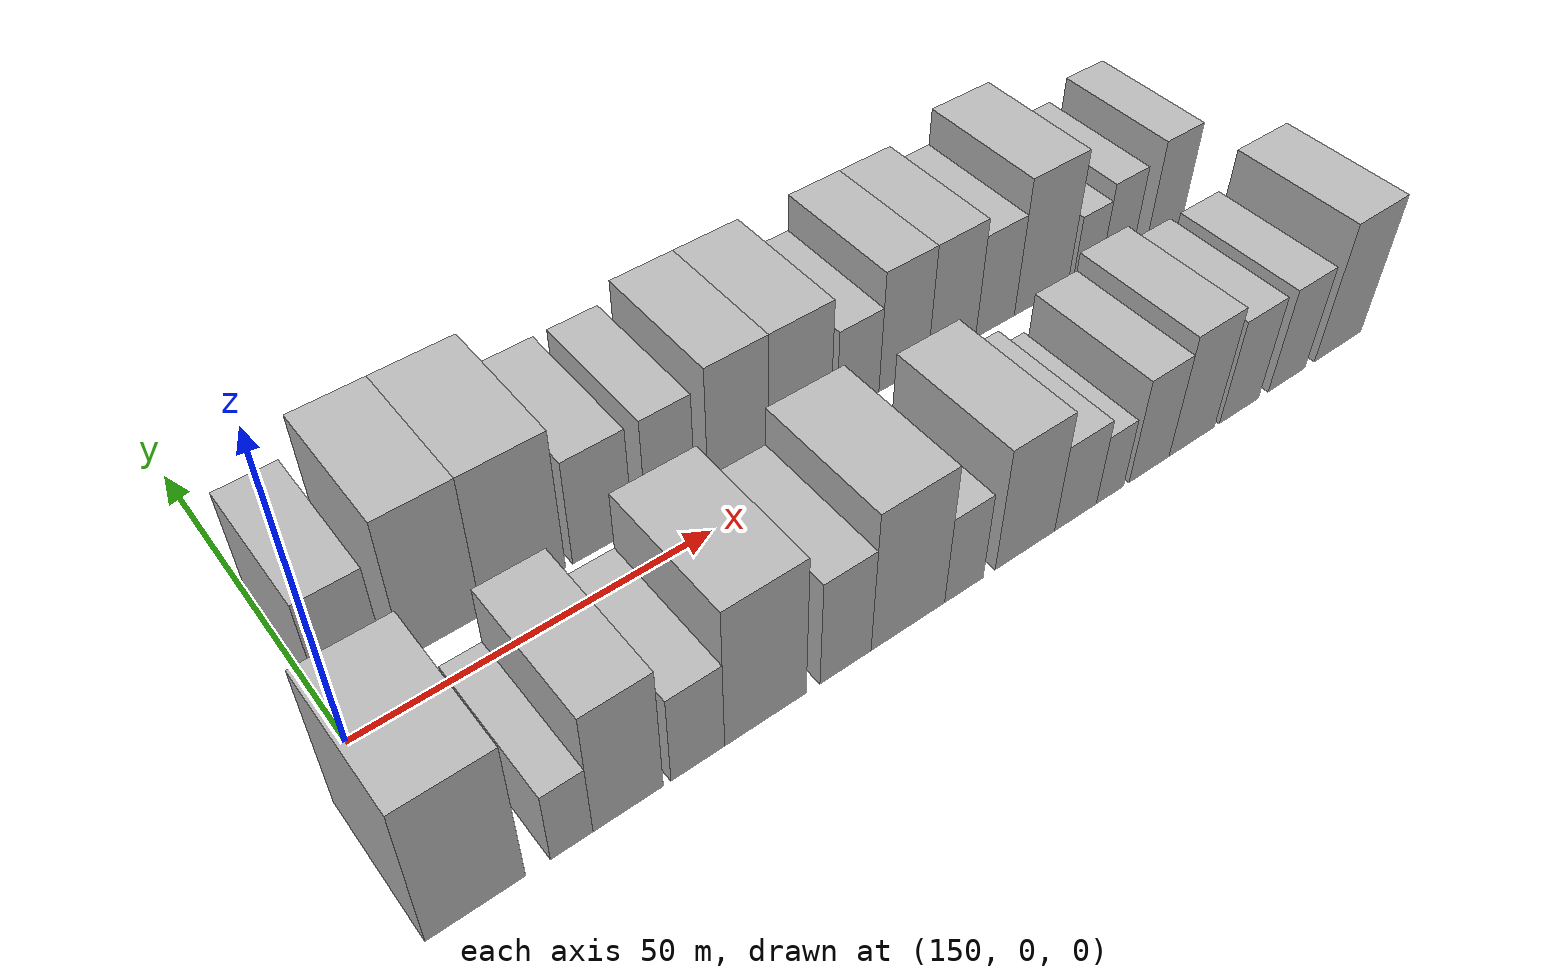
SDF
<sdf version="1.6">
 <world name="default">
  <model name="building_16">
   <static>1</static>
   <pose>154.3369 16.0000 0 0.000000 0.000000 1.570796</pose>
   <link name="link">
    <pose>0 0 9.00 0 0 0</pose>
    <collision name="collision"><geometry><box><size>20.0000 8.3127 18.0000</size></box></geometry></collision>
    <visual name="visual">
     <cast_shadows>0</cast_shadows>
     <geometry><box><size>20.0000 8.3127 18.0000</size></box></geometry>
     <material>
      <script>
       <uri>model://HANNAS_wall/materials/scripts</uri>
       <uri>model://HANNAS_wall/materials/textures</uri>
       <name>vrc/HANNAS_wall</name>
      </script>
     </material>
    </visual>
   </link>
  </model>
  <model name="building_17">
   <static>1</static>
   <pose>165.6485 16.0000 0 0.000000 0.000000 1.570796</pose>
   <link name="link">
    <pose>0 0 12.00 0 0 0</pose>
    <collision name="collision"><geometry><box><size>20.0000 10.3104 24.0000</size></box></geometry></collision>
    <visual name="visual">
     <cast_shadows>0</cast_shadows>
     <geometry><box><size>20.0000 10.3104 24.0000</size></box></geometry>
     <material>
      <script>
       <uri>model://HANNAS_wall/materials/scripts</uri>
       <uri>model://HANNAS_wall/materials/textures</uri>
       <name>vrc/HANNAS_wall</name>
      </script>
     </material>
    </visual>
   </link>
  </model>
  <model name="building_18">
   <static>1</static>
   <pose>176.6522 16.0000 0 0.000000 0.000000 1.570796</pose>
   <link name="link">
    <pose>0 0 12.00 0 0 0</pose>
    <collision name="collision"><geometry><box><size>20.0000 11.6972 24.0000</size></box></geometry></collision>
    <visual name="visual">
     <cast_shadows>0</cast_shadows>
     <geometry><box><size>20.0000 11.6972 24.0000</size></box></geometry>
     <material>
      <script>
       <uri>model://HANNAS_wall/materials/scripts</uri>
       <uri>model://HANNAS_wall/materials/textures</uri>
       <name>vrc/HANNAS_wall</name>
      </script>
     </material>
    </visual>
   </link>
  </model>
  <model name="building_19">
   <static>1</static>
   <pose>187.9328 16.0000 0 0.000000 0.000000 1.570796</pose>
   <link name="link">
    <pose>0 0 9.00 0 0 0</pose>
    <collision name="collision"><geometry><box><size>20.0000 8.8639 18.0000</size></box></geometry></collision>
    <visual name="visual">
     <cast_shadows>0</cast_shadows>
     <geometry><box><size>20.0000 8.8639 18.0000</size></box></geometry>
     <material>
      <script>
       <uri>model://HANNAS_wall/materials/scripts</uri>
       <uri>model://HANNAS_wall/materials/textures</uri>
       <name>vrc/HANNAS_wall</name>
      </script>
     </material>
    </visual>
   </link>
  </model>
  <model name="building_20">
   <static>1</static>
   <pose>198.1015 16.0000 0 0.000000 0.000000 1.570796</pose>
   <link name="link">
    <pose>0 0 9.00 0 0 0</pose>
    <collision name="collision"><geometry><box><size>20.0000 7.4735 18.0000</size></box></geometry></collision>
    <visual name="visual">
     <cast_shadows>0</cast_shadows>
     <geometry><box><size>20.0000 7.4735 18.0000</size></box></geometry>
     <material>
      <script>
       <uri>model://HANNAS_wall/materials/scripts</uri>
       <uri>model://HANNAS_wall/materials/textures</uri>
       <name>vrc/HANNAS_wall</name>
      </script>
     </material>
    </visual>
   </link>
  </model>
  <model name="building_21">
   <static>1</static>
   <pose>208.7052 16.0000 0 0.000000 0.000000 1.570796</pose>
   <link name="link">
    <pose>0 0 10.50 0 0 0</pose>
    <collision name="collision"><geometry><box><size>20.0000 9.7339 21.0000</size></box></geometry></collision>
    <visual name="visual">
     <cast_shadows>0</cast_shadows>
     <geometry><box><size>20.0000 9.7339 21.0000</size></box></geometry>
     <material>
      <script>
       <uri>model://HANNAS_wall/materials/scripts</uri>
       <uri>model://HANNAS_wall/materials/textures</uri>
       <name>vrc/HANNAS_wall</name>
      </script>
     </material>
    </visual>
   </link>
  </model>
  <model name="building_22">
   <static>1</static>
   <pose>218.7439 16.0000 0 0.000000 0.000000 1.570796</pose>
   <link name="link">
    <pose>0 0 10.50 0 0 0</pose>
    <collision name="collision"><geometry><box><size>20.0000 10.3436 21.0000</size></box></geometry></collision>
    <visual name="visual">
     <cast_shadows>0</cast_shadows>
     <geometry><box><size>20.0000 10.3436 21.0000</size></box></geometry>
     <material>
      <script>
       <uri>model://HANNAS_wall/materials/scripts</uri>
       <uri>model://HANNAS_wall/materials/textures</uri>
       <name>vrc/HANNAS_wall</name>
      </script>
     </material>
    </visual>
   </link>
  </model>
  <model name="building_23">
   <static>1</static>
   <pose>228.6101 16.0000 0 0.000000 0.000000 1.570796</pose>
   <link name="link">
    <pose>0 0 7.50 0 0 0</pose>
    <collision name="collision"><geometry><box><size>20.0000 7.3887 15.0000</size></box></geometry></collision>
    <visual name="visual">
     <cast_shadows>0</cast_shadows>
     <geometry><box><size>20.0000 7.3887 15.0000</size></box></geometry>
     <material>
      <script>
       <uri>model://HANNAS_wall/materials/scripts</uri>
       <uri>model://HANNAS_wall/materials/textures</uri>
       <name>vrc/HANNAS_wall</name>
      </script>
     </material>
    </visual>
   </link>
  </model>
  <model name="building_24">
   <static>1</static>
   <pose>236.6846 16.0000 0 0.000000 0.000000 1.570796</pose>
   <link name="link">
    <pose>0 0 10.50 0 0 0</pose>
    <collision name="collision"><geometry><box><size>20.0000 8.7604 21.0000</size></box></geometry></collision>
    <visual name="visual">
     <cast_shadows>0</cast_shadows>
     <geometry><box><size>20.0000 8.7604 21.0000</size></box></geometry>
     <material>
      <script>
       <uri>model://HANNAS_wall/materials/scripts</uri>
       <uri>model://HANNAS_wall/materials/textures</uri>
       <name>vrc/HANNAS_wall</name>
      </script>
     </material>
    </visual>
   </link>
  </model>
  <model name="building_25">
   <static>1</static>
   <pose>245.5291 16.0000 0 0.000000 0.000000 1.570796</pose>
   <link name="link">
    <pose>0 0 10.50 0 0 0</pose>
    <collision name="collision"><geometry><box><size>20.0000 8.9286 21.0000</size></box></geometry></collision>
    <visual name="visual">
     <cast_shadows>0</cast_shadows>
     <geometry><box><size>20.0000 8.9286 21.0000</size></box></geometry>
     <material>
      <script>
       <uri>model://HANNAS_wall/materials/scripts</uri>
       <uri>model://HANNAS_wall/materials/textures</uri>
       <name>vrc/HANNAS_wall</name>
      </script>
     </material>
    </visual>
   </link>
  </model>
  <model name="building_26">
   <static>1</static>
   <pose>253.7063 16.0000 0 0.000000 0.000000 1.570796</pose>
   <link name="link">
    <pose>0 0 9.00 0 0 0</pose>
    <collision name="collision"><geometry><box><size>20.0000 7.4258 18.0000</size></box></geometry></collision>
    <visual name="visual">
     <cast_shadows>0</cast_shadows>
     <geometry><box><size>20.0000 7.4258 18.0000</size></box></geometry>
     <material>
      <script>
       <uri>model://HANNAS_wall/materials/scripts</uri>
       <uri>model://HANNAS_wall/materials/textures</uri>
       <name>vrc/HANNAS_wall</name>
      </script>
     </material>
    </visual>
   </link>
  </model>
  <model name="building_27">
   <static>1</static>
   <pose>262.7256 16.0000 0 0.000000 0.000000 1.570796</pose>
   <link name="link">
    <pose>0 0 12.00 0 0 0</pose>
    <collision name="collision"><geometry><box><size>20.0000 10.6129 24.0000</size></box></geometry></collision>
    <visual name="visual">
     <cast_shadows>0</cast_shadows>
     <geometry><box><size>20.0000 10.6129 24.0000</size></box></geometry>
     <material>
      <script>
       <uri>model://HANNAS_wall/materials/scripts</uri>
       <uri>model://HANNAS_wall/materials/textures</uri>
       <name>vrc/HANNAS_wall</name>
      </script>
     </material>
    </visual>
   </link>
  </model>
  <model name="building_28">
   <static>1</static>
   <pose>271.9829 16.0000 0 0.000000 0.000000 1.570796</pose>
   <link name="link">
    <pose>0 0 6.00 0 0 0</pose>
    <collision name="collision"><geometry><box><size>20.0000 5.9017 12.0000</size></box></geometry></collision>
    <visual name="visual">
     <cast_shadows>0</cast_shadows>
     <geometry><box><size>20.0000 5.9017 12.0000</size></box></geometry>
     <material>
      <script>
       <uri>model://HANNAS_wall/materials/scripts</uri>
       <uri>model://HANNAS_wall/materials/textures</uri>
       <name>vrc/HANNAS_wall</name>
      </script>
     </material>
    </visual>
   </link>
  </model>
  <model name="building_29">
   <static>1</static>
   <pose>278.2577 16.0000 0 0.000000 0.000000 1.570796</pose>
   <link name="link">
    <pose>0 0 7.50 0 0 0</pose>
    <collision name="collision"><geometry><box><size>20.0000 6.6477 15.0000</size></box></geometry></collision>
    <visual name="visual">
     <cast_shadows>0</cast_shadows>
     <geometry><box><size>20.0000 6.6477 15.0000</size></box></geometry>
     <material>
      <script>
       <uri>model://HANNAS_wall/materials/scripts</uri>
       <uri>model://HANNAS_wall/materials/textures</uri>
       <name>vrc/HANNAS_wall</name>
      </script>
     </material>
    </visual>
   </link>
  </model>
  <model name="building_30">
   <static>1</static>
   <pose>288.3576 16.0000 0 0.000000 0.000000 1.570796</pose>
   <link name="link">
    <pose>0 0 9.00 0 0 0</pose>
    <collision name="collision"><geometry><box><size>20.0000 7.5522 18.0000</size></box></geometry></collision>
    <visual name="visual">
     <cast_shadows>0</cast_shadows>
     <geometry><box><size>20.0000 7.5522 18.0000</size></box></geometry>
     <material>
      <script>
       <uri>model://HANNAS_wall/materials/scripts</uri>
       <uri>model://HANNAS_wall/materials/textures</uri>
       <name>vrc/HANNAS_wall</name>
      </script>
     </material>
    </visual>
   </link>
  </model>
  <model name="building_45">
   <static>1</static>
   <pose>151.3033 -16.0000 0 0.000000 0.000000 1.570796</pose>
   <link name="link">
    <pose>0 0 12.00 0 0 0</pose>
    <collision name="collision"><geometry><box><size>20.0000 11.7904 24.0000</size></box></geometry></collision>
    <visual name="visual">
     <cast_shadows>0</cast_shadows>
     <geometry><box><size>20.0000 11.7904 24.0000</size></box></geometry>
     <material>
      <script>
       <uri>model://HANNAS_wall/materials/scripts</uri>
       <uri>model://HANNAS_wall/materials/textures</uri>
       <name>vrc/HANNAS_wall</name>
      </script>
     </material>
    </visual>
   </link>
  </model>
  <model name="building_46">
   <static>1</static>
   <pose>162.8481 -16.0000 0 0.000000 0.000000 1.570796</pose>
   <link name="link">
    <pose>0 0 6.00 0 0 0</pose>
    <collision name="collision"><geometry><box><size>20.0000 5.2992 12.0000</size></box></geometry></collision>
    <visual name="visual">
     <cast_shadows>0</cast_shadows>
     <geometry><box><size>20.0000 5.2992 12.0000</size></box></geometry>
     <material>
      <script>
       <uri>model://HANNAS_wall/materials/scripts</uri>
       <uri>model://HANNAS_wall/materials/textures</uri>
       <name>vrc/HANNAS_wall</name>
      </script>
     </material>
    </visual>
   </link>
  </model>
  <model name="building_47">
   <static>1</static>
   <pose>170.0178 -16.0000 0 0.000000 0.000000 1.570796</pose>
   <link name="link">
    <pose>0 0 10.50 0 0 0</pose>
    <collision name="collision"><geometry><box><size>20.0000 9.0403 21.0000</size></box></geometry></collision>
    <visual name="visual">
     <cast_shadows>0</cast_shadows>
     <geometry><box><size>20.0000 9.0403 21.0000</size></box></geometry>
     <material>
      <script>
       <uri>model://HANNAS_wall/materials/scripts</uri>
       <uri>model://HANNAS_wall/materials/textures</uri>
       <name>vrc/HANNAS_wall</name>
      </script>
     </material>
    </visual>
   </link>
  </model>
  <model name="building_48">
   <static>1</static>
   <pose>179.1575 -16.0000 0 0.000000 0.000000 1.570796</pose>
   <link name="link">
    <pose>0 0 7.50 0 0 0</pose>
    <collision name="collision"><geometry><box><size>20.0000 7.2392 15.0000</size></box></geometry></collision>
    <visual name="visual">
     <cast_shadows>0</cast_shadows>
     <geometry><box><size>20.0000 7.2392 15.0000</size></box></geometry>
     <material>
      <script>
       <uri>model://HANNAS_wall/materials/scripts</uri>
       <uri>model://HANNAS_wall/materials/textures</uri>
       <name>vrc/HANNAS_wall</name>
      </script>
     </material>
    </visual>
   </link>
  </model>
  <model name="building_49">
   <static>1</static>
   <pose>188.5196 -16.0000 0 0.000000 0.000000 1.570796</pose>
   <link name="link">
    <pose>0 0 12.00 0 0 0</pose>
    <collision name="collision"><geometry><box><size>20.0000 11.4849 24.0000</size></box></geometry></collision>
    <visual name="visual">
     <cast_shadows>0</cast_shadows>
     <geometry><box><size>20.0000 11.4849 24.0000</size></box></geometry>
     <material>
      <script>
       <uri>model://HANNAS_wall/materials/scripts</uri>
       <uri>model://HANNAS_wall/materials/textures</uri>
       <name>vrc/HANNAS_wall</name>
      </script>
     </material>
    </visual>
   </link>
  </model>
  <model name="building_50">
   <static>1</static>
   <pose>200.0635 -16.0000 0 0.000000 0.000000 1.570796</pose>
   <link name="link">
    <pose>0 0 9.00 0 0 0</pose>
    <collision name="collision"><geometry><box><size>20.0000 7.6030 18.0000</size></box></geometry></collision>
    <visual name="visual">
     <cast_shadows>0</cast_shadows>
     <geometry><box><size>20.0000 7.6030 18.0000</size></box></geometry>
     <material>
      <script>
       <uri>model://HANNAS_wall/materials/scripts</uri>
       <uri>model://HANNAS_wall/materials/textures</uri>
       <name>vrc/HANNAS_wall</name>
      </script>
     </material>
    </visual>
   </link>
  </model>
  <model name="building_51">
   <static>1</static>
   <pose>209.5855 -16.0000 0 0.000000 0.000000 1.570796</pose>
   <link name="link">
    <pose>0 0 12.00 0 0 0</pose>
    <collision name="collision"><geometry><box><size>20.0000 11.4408 24.0000</size></box></geometry></collision>
    <visual name="visual">
     <cast_shadows>0</cast_shadows>
     <geometry><box><size>20.0000 11.4408 24.0000</size></box></geometry>
     <material>
      <script>
       <uri>model://HANNAS_wall/materials/scripts</uri>
       <uri>model://HANNAS_wall/materials/textures</uri>
       <name>vrc/HANNAS_wall</name>
      </script>
     </material>
    </visual>
   </link>
  </model>
  <model name="building_52">
   <static>1</static>
   <pose>218.4262 -16.0000 0 0.000000 0.000000 1.570796</pose>
   <link name="link">
    <pose>0 0 7.50 0 0 0</pose>
    <collision name="collision"><geometry><box><size>20.0000 6.2406 15.0000</size></box></geometry></collision>
    <visual name="visual">
     <cast_shadows>0</cast_shadows>
     <geometry><box><size>20.0000 6.2406 15.0000</size></box></geometry>
     <material>
      <script>
       <uri>model://HANNAS_wall/materials/scripts</uri>
       <uri>model://HANNAS_wall/materials/textures</uri>
       <name>vrc/HANNAS_wall</name>
      </script>
     </material>
    </visual>
   </link>
  </model>
  <model name="building_53">
   <static>1</static>
   <pose>228.5655 -16.0000 0 0.000000 0.000000 1.570796</pose>
   <link name="link">
    <pose>0 0 10.50 0 0 0</pose>
    <collision name="collision"><geometry><box><size>20.0000 10.0379 21.0000</size></box></geometry></collision>
    <visual name="visual">
     <cast_shadows>0</cast_shadows>
     <geometry><box><size>20.0000 10.0379 21.0000</size></box></geometry>
     <material>
      <script>
       <uri>model://HANNAS_wall/materials/scripts</uri>
       <uri>model://HANNAS_wall/materials/textures</uri>
       <name>vrc/HANNAS_wall</name>
      </script>
     </material>
    </visual>
   </link>
  </model>
  <model name="building_54">
   <static>1</static>
   <pose>237.2709 -16.0000 0 0.000000 0.000000 1.570796</pose>
   <link name="link">
    <pose>0 0 7.50 0 0 0</pose>
    <collision name="collision"><geometry><box><size>20.0000 7.3729 15.0000</size></box></geometry></collision>
    <visual name="visual">
     <cast_shadows>0</cast_shadows>
     <geometry><box><size>20.0000 7.3729 15.0000</size></box></geometry>
     <material>
      <script>
       <uri>model://HANNAS_wall/materials/scripts</uri>
       <uri>model://HANNAS_wall/materials/textures</uri>
       <name>vrc/HANNAS_wall</name>
      </script>
     </material>
    </visual>
   </link>
  </model>
  <model name="building_55">
   <static>1</static>
   <pose>243.4143 -16.0000 0 0.000000 0.000000 1.570796</pose>
   <link name="link">
    <pose>0 0 6.00 0 0 0</pose>
    <collision name="collision"><geometry><box><size>20.0000 4.9140 12.0000</size></box></geometry></collision>
    <visual name="visual">
     <cast_shadows>0</cast_shadows>
     <geometry><box><size>20.0000 4.9140 12.0000</size></box></geometry>
     <material>
      <script>
       <uri>model://HANNAS_wall/materials/scripts</uri>
       <uri>model://HANNAS_wall/materials/textures</uri>
       <name>vrc/HANNAS_wall</name>
      </script>
     </material>
    </visual>
   </link>
  </model>
  <model name="building_56">
   <static>1</static>
   <pose>250.5929 -16.0000 0 0.000000 0.000000 1.570796</pose>
   <link name="link">
    <pose>0 0 9.00 0 0 0</pose>
    <collision name="collision"><geometry><box><size>20.0000 7.4432 18.0000</size></box></geometry></collision>
    <visual name="visual">
     <cast_shadows>0</cast_shadows>
     <geometry><box><size>20.0000 7.4432 18.0000</size></box></geometry>
     <material>
      <script>
       <uri>model://HANNAS_wall/materials/scripts</uri>
       <uri>model://HANNAS_wall/materials/textures</uri>
       <name>vrc/HANNAS_wall</name>
      </script>
     </material>
    </visual>
   </link>
  </model>
  <model name="building_57">
   <static>1</static>
   <pose>258.6825 -16.0000 0 0.000000 0.000000 1.570796</pose>
   <link name="link">
    <pose>0 0 10.50 0 0 0</pose>
    <collision name="collision"><geometry><box><size>20.0000 8.7361 21.0000</size></box></geometry></collision>
    <visual name="visual">
     <cast_shadows>0</cast_shadows>
     <geometry><box><size>20.0000 8.7361 21.0000</size></box></geometry>
     <material>
      <script>
       <uri>model://HANNAS_wall/materials/scripts</uri>
       <uri>model://HANNAS_wall/materials/textures</uri>
       <name>vrc/HANNAS_wall</name>
      </script>
     </material>
    </visual>
   </link>
  </model>
  <model name="building_58">
   <static>1</static>
   <pose>267.9493 -16.0000 0 0.000000 0.000000 1.570796</pose>
   <link name="link">
    <pose>0 0 9.00 0 0 0</pose>
    <collision name="collision"><geometry><box><size>20.0000 7.7975 18.0000</size></box></geometry></collision>
    <visual name="visual">
     <cast_shadows>0</cast_shadows>
     <geometry><box><size>20.0000 7.7975 18.0000</size></box></geometry>
     <material>
      <script>
       <uri>model://HANNAS_wall/materials/scripts</uri>
       <uri>model://HANNAS_wall/materials/textures</uri>
       <name>vrc/HANNAS_wall</name>
      </script>
     </material>
    </visual>
   </link>
  </model>
  <model name="building_59">
   <static>1</static>
   <pose>277.6615 -16.0000 0 0.000000 0.000000 1.570796</pose>
   <link name="link">
    <pose>0 0 9.00 0 0 0</pose>
    <collision name="collision"><geometry><box><size>20.0000 7.6269 18.0000</size></box></geometry></collision>
    <visual name="visual">
     <cast_shadows>0</cast_shadows>
     <geometry><box><size>20.0000 7.6269 18.0000</size></box></geometry>
     <material>
      <script>
       <uri>model://HANNAS_wall/materials/scripts</uri>
       <uri>model://HANNAS_wall/materials/textures</uri>
       <name>vrc/HANNAS_wall</name>
      </script>
     </material>
    </visual>
   </link>
  </model>
  <model name="building_60">
   <static>1</static>
   <pose>288.4911 -16.0000 0 0.000000 0.000000 1.570796</pose>
   <link name="link">
    <pose>0 0 12.00 0 0 0</pose>
    <collision name="collision"><geometry><box><size>20.0000 10.0323 24.0000</size></box></geometry></collision>
    <visual name="visual">
     <cast_shadows>0</cast_shadows>
     <geometry><box><size>20.0000 10.0323 24.0000</size></box></geometry>
     <material>
      <script>
       <uri>model://HANNAS_wall/materials/scripts</uri>
       <uri>model://HANNAS_wall/materials/textures</uri>
       <name>vrc/HANNAS_wall</name>
      </script>
     </material>
    </visual>
   </link>
  </model>
 </world>
</sdf>
